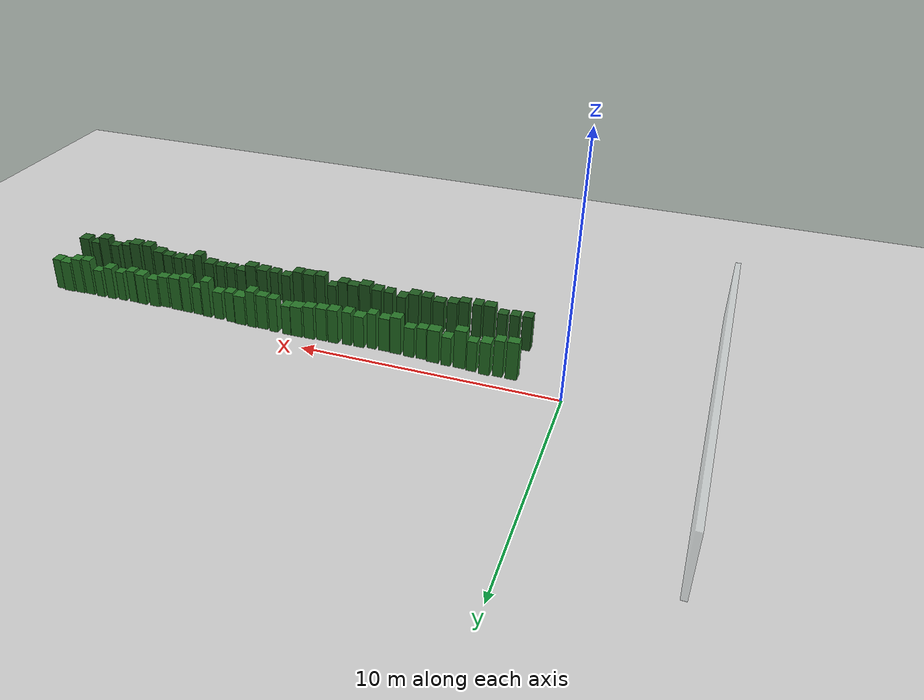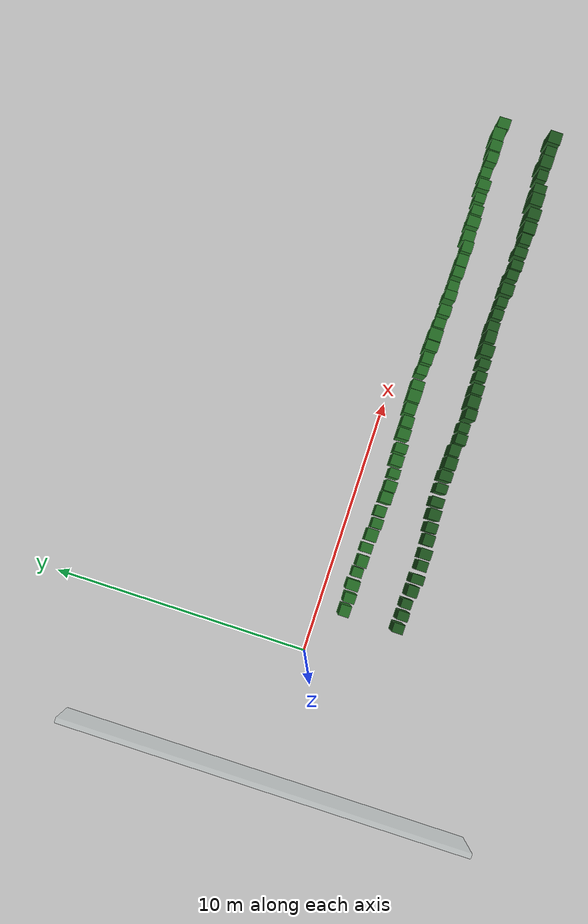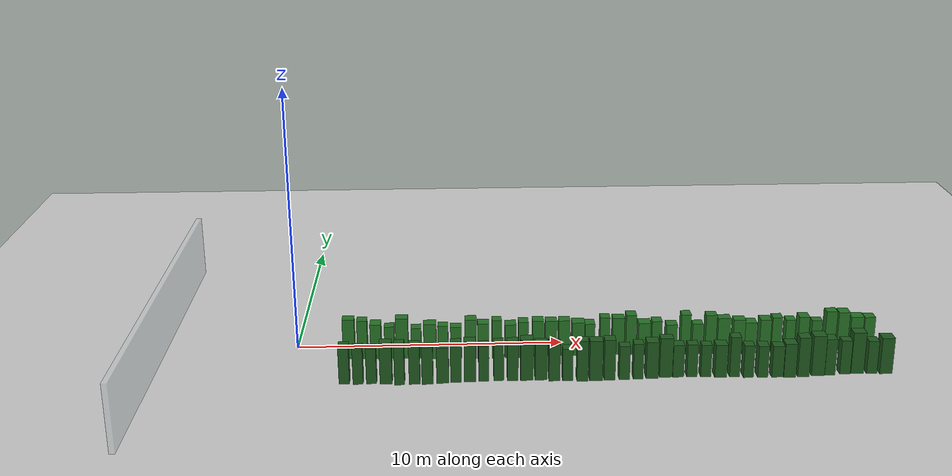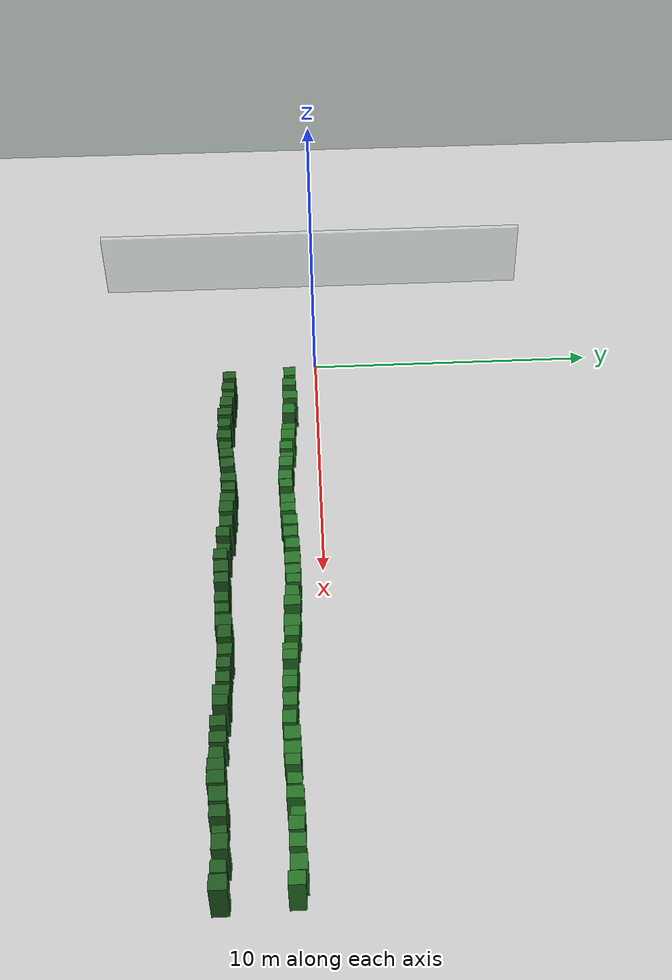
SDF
<sdf version="1.6">
 <world name="default">
  <include><uri>model://ground_plane</uri></include>
  <include><uri>model://sun</uri></include>
  <model name="crop_row_0">
   <static>true</static>
   <link name="row">
    <collision name="c0">
     <pose>2.003 -3.043 0.730 0 0 0</pose>
     <geometry><box><size>0.370 0.432 1.460</size></box></geometry>
    </collision>
    <visual name="v0">
     <pose>2.003 -3.043 0.730 0 0 0</pose>
     <geometry><box><size>0.370 0.432 1.460</size></box></geometry>
     <material><ambient>0.12 0.35 0.12 1</ambient><diffuse>0.12 0.35 0.12 1</diffuse></material>
    </visual>
    <collision name="c1">
     <pose>2.495 -3.077 0.701 0 0 0</pose>
     <geometry><box><size>0.358 0.437 1.403</size></box></geometry>
    </collision>
    <visual name="v1">
     <pose>2.495 -3.077 0.701 0 0 0</pose>
     <geometry><box><size>0.358 0.437 1.403</size></box></geometry>
     <material><ambient>0.12 0.35 0.12 1</ambient><diffuse>0.12 0.35 0.12 1</diffuse></material>
    </visual>
    <collision name="c2">
     <pose>2.970 -3.068 0.685 0 0 0</pose>
     <geometry><box><size>0.362 0.407 1.370</size></box></geometry>
    </collision>
    <visual name="v2">
     <pose>2.970 -3.068 0.685 0 0 0</pose>
     <geometry><box><size>0.362 0.407 1.370</size></box></geometry>
     <material><ambient>0.12 0.35 0.12 1</ambient><diffuse>0.12 0.35 0.12 1</diffuse></material>
    </visual>
    <collision name="c3">
     <pose>3.492 -3.118 0.790 0 0 0</pose>
     <geometry><box><size>0.432 0.422 1.579</size></box></geometry>
    </collision>
    <visual name="v3">
     <pose>3.492 -3.118 0.790 0 0 0</pose>
     <geometry><box><size>0.432 0.422 1.579</size></box></geometry>
     <material><ambient>0.12 0.35 0.12 1</ambient><diffuse>0.12 0.35 0.12 1</diffuse></material>
    </visual>
    <collision name="c4">
     <pose>3.972 -3.160 0.772 0 0 0</pose>
     <geometry><box><size>0.356 0.498 1.543</size></box></geometry>
    </collision>
    <visual name="v4">
     <pose>3.972 -3.160 0.772 0 0 0</pose>
     <geometry><box><size>0.356 0.498 1.543</size></box></geometry>
     <material><ambient>0.12 0.35 0.12 1</ambient><diffuse>0.12 0.35 0.12 1</diffuse></material>
    </visual>
    <collision name="c5">
     <pose>4.507 -3.174 0.763 0 0 0</pose>
     <geometry><box><size>0.390 0.412 1.526</size></box></geometry>
    </collision>
    <visual name="v5">
     <pose>4.507 -3.174 0.763 0 0 0</pose>
     <geometry><box><size>0.390 0.412 1.526</size></box></geometry>
     <material><ambient>0.12 0.35 0.12 1</ambient><diffuse>0.12 0.35 0.12 1</diffuse></material>
    </visual>
    <collision name="c6">
     <pose>4.965 -3.171 0.710 0 0 0</pose>
     <geometry><box><size>0.398 0.464 1.419</size></box></geometry>
    </collision>
    <visual name="v6">
     <pose>4.965 -3.171 0.710 0 0 0</pose>
     <geometry><box><size>0.398 0.464 1.419</size></box></geometry>
     <material><ambient>0.12 0.35 0.12 1</ambient><diffuse>0.12 0.35 0.12 1</diffuse></material>
    </visual>
    <collision name="c7">
     <pose>5.507 -3.129 0.686 0 0 0</pose>
     <geometry><box><size>0.438 0.421 1.371</size></box></geometry>
    </collision>
    <visual name="v7">
     <pose>5.507 -3.129 0.686 0 0 0</pose>
     <geometry><box><size>0.438 0.421 1.371</size></box></geometry>
     <material><ambient>0.12 0.35 0.12 1</ambient><diffuse>0.12 0.35 0.12 1</diffuse></material>
    </visual>
    <collision name="c8">
     <pose>5.980 -3.070 0.759 0 0 0</pose>
     <geometry><box><size>0.389 0.445 1.518</size></box></geometry>
    </collision>
    <visual name="v8">
     <pose>5.980 -3.070 0.759 0 0 0</pose>
     <geometry><box><size>0.389 0.445 1.518</size></box></geometry>
     <material><ambient>0.12 0.35 0.12 1</ambient><diffuse>0.12 0.35 0.12 1</diffuse></material>
    </visual>
    <collision name="c9">
     <pose>6.483 -3.030 0.775 0 0 0</pose>
     <geometry><box><size>0.418 0.457 1.550</size></box></geometry>
    </collision>
    <visual name="v9">
     <pose>6.483 -3.030 0.775 0 0 0</pose>
     <geometry><box><size>0.418 0.457 1.550</size></box></geometry>
     <material><ambient>0.12 0.35 0.12 1</ambient><diffuse>0.12 0.35 0.12 1</diffuse></material>
    </visual>
    <collision name="c10">
     <pose>6.972 -2.998 0.684 0 0 0</pose>
     <geometry><box><size>0.365 0.498 1.367</size></box></geometry>
    </collision>
    <visual name="v10">
     <pose>6.972 -2.998 0.684 0 0 0</pose>
     <geometry><box><size>0.365 0.498 1.367</size></box></geometry>
     <material><ambient>0.12 0.35 0.12 1</ambient><diffuse>0.12 0.35 0.12 1</diffuse></material>
    </visual>
    <collision name="c11">
     <pose>7.506 -2.981 0.734 0 0 0</pose>
     <geometry><box><size>0.355 0.449 1.467</size></box></geometry>
    </collision>
    <visual name="v11">
     <pose>7.506 -2.981 0.734 0 0 0</pose>
     <geometry><box><size>0.355 0.449 1.467</size></box></geometry>
     <material><ambient>0.12 0.35 0.12 1</ambient><diffuse>0.12 0.35 0.12 1</diffuse></material>
    </visual>
    <collision name="c12">
     <pose>8.006 -2.992 0.739 0 0 0</pose>
     <geometry><box><size>0.391 0.488 1.478</size></box></geometry>
    </collision>
    <visual name="v12">
     <pose>8.006 -2.992 0.739 0 0 0</pose>
     <geometry><box><size>0.391 0.488 1.478</size></box></geometry>
     <material><ambient>0.12 0.35 0.12 1</ambient><diffuse>0.12 0.35 0.12 1</diffuse></material>
    </visual>
    <collision name="c13">
     <pose>8.513 -3.019 0.789 0 0 0</pose>
     <geometry><box><size>0.459 0.446 1.578</size></box></geometry>
    </collision>
    <visual name="v13">
     <pose>8.513 -3.019 0.789 0 0 0</pose>
     <geometry><box><size>0.459 0.446 1.578</size></box></geometry>
     <material><ambient>0.12 0.35 0.12 1</ambient><diffuse>0.12 0.35 0.12 1</diffuse></material>
    </visual>
    <collision name="c14">
     <pose>9.026 -3.020 0.729 0 0 0</pose>
     <geometry><box><size>0.441 0.406 1.459</size></box></geometry>
    </collision>
    <visual name="v14">
     <pose>9.026 -3.020 0.729 0 0 0</pose>
     <geometry><box><size>0.441 0.406 1.459</size></box></geometry>
     <material><ambient>0.12 0.35 0.12 1</ambient><diffuse>0.12 0.35 0.12 1</diffuse></material>
    </visual>
    <collision name="c15">
     <pose>9.497 -3.116 0.734 0 0 0</pose>
     <geometry><box><size>0.400 0.428 1.467</size></box></geometry>
    </collision>
    <visual name="v15">
     <pose>9.497 -3.116 0.734 0 0 0</pose>
     <geometry><box><size>0.400 0.428 1.467</size></box></geometry>
     <material><ambient>0.12 0.35 0.12 1</ambient><diffuse>0.12 0.35 0.12 1</diffuse></material>
    </visual>
    <collision name="c16">
     <pose>9.970 -3.107 0.612 0 0 0</pose>
     <geometry><box><size>0.365 0.417 1.224</size></box></geometry>
    </collision>
    <visual name="v16">
     <pose>9.970 -3.107 0.612 0 0 0</pose>
     <geometry><box><size>0.365 0.417 1.224</size></box></geometry>
     <material><ambient>0.12 0.35 0.12 1</ambient><diffuse>0.12 0.35 0.12 1</diffuse></material>
    </visual>
    <collision name="c17">
     <pose>10.496 -3.172 0.774 0 0 0</pose>
     <geometry><box><size>0.401 0.425 1.549</size></box></geometry>
    </collision>
    <visual name="v17">
     <pose>10.496 -3.172 0.774 0 0 0</pose>
     <geometry><box><size>0.401 0.425 1.549</size></box></geometry>
     <material><ambient>0.12 0.35 0.12 1</ambient><diffuse>0.12 0.35 0.12 1</diffuse></material>
    </visual>
    <collision name="c18">
     <pose>10.982 -3.133 0.764 0 0 0</pose>
     <geometry><box><size>0.465 0.455 1.528</size></box></geometry>
    </collision>
    <visual name="v18">
     <pose>10.982 -3.133 0.764 0 0 0</pose>
     <geometry><box><size>0.465 0.455 1.528</size></box></geometry>
     <material><ambient>0.12 0.35 0.12 1</ambient><diffuse>0.12 0.35 0.12 1</diffuse></material>
    </visual>
    <collision name="c19">
     <pose>11.472 -3.117 0.777 0 0 0</pose>
     <geometry><box><size>0.397 0.442 1.554</size></box></geometry>
    </collision>
    <visual name="v19">
     <pose>11.472 -3.117 0.777 0 0 0</pose>
     <geometry><box><size>0.397 0.442 1.554</size></box></geometry>
     <material><ambient>0.12 0.35 0.12 1</ambient><diffuse>0.12 0.35 0.12 1</diffuse></material>
    </visual>
    <collision name="c20">
     <pose>12.007 -3.119 0.647 0 0 0</pose>
     <geometry><box><size>0.380 0.418 1.293</size></box></geometry>
    </collision>
    <visual name="v20">
     <pose>12.007 -3.119 0.647 0 0 0</pose>
     <geometry><box><size>0.380 0.418 1.293</size></box></geometry>
     <material><ambient>0.12 0.35 0.12 1</ambient><diffuse>0.12 0.35 0.12 1</diffuse></material>
    </visual>
    <collision name="c21">
     <pose>12.505 -3.090 0.684 0 0 0</pose>
     <geometry><box><size>0.351 0.426 1.368</size></box></geometry>
    </collision>
    <visual name="v21">
     <pose>12.505 -3.090 0.684 0 0 0</pose>
     <geometry><box><size>0.351 0.426 1.368</size></box></geometry>
     <material><ambient>0.12 0.35 0.12 1</ambient><diffuse>0.12 0.35 0.12 1</diffuse></material>
    </visual>
    <collision name="c22">
     <pose>13.014 -3.037 0.703 0 0 0</pose>
     <geometry><box><size>0.440 0.495 1.406</size></box></geometry>
    </collision>
    <visual name="v22">
     <pose>13.014 -3.037 0.703 0 0 0</pose>
     <geometry><box><size>0.440 0.495 1.406</size></box></geometry>
     <material><ambient>0.12 0.35 0.12 1</ambient><diffuse>0.12 0.35 0.12 1</diffuse></material>
    </visual>
    <collision name="c23">
     <pose>13.524 -2.991 0.756 0 0 0</pose>
     <geometry><box><size>0.467 0.405 1.512</size></box></geometry>
    </collision>
    <visual name="v23">
     <pose>13.524 -2.991 0.756 0 0 0</pose>
     <geometry><box><size>0.467 0.405 1.512</size></box></geometry>
     <material><ambient>0.12 0.35 0.12 1</ambient><diffuse>0.12 0.35 0.12 1</diffuse></material>
    </visual>
    <collision name="c24">
     <pose>13.965 -2.989 0.621 0 0 0</pose>
     <geometry><box><size>0.402 0.439 1.241</size></box></geometry>
    </collision>
    <visual name="v24">
     <pose>13.965 -2.989 0.621 0 0 0</pose>
     <geometry><box><size>0.402 0.439 1.241</size></box></geometry>
     <material><ambient>0.12 0.35 0.12 1</ambient><diffuse>0.12 0.35 0.12 1</diffuse></material>
    </visual>
    <collision name="c25">
     <pose>14.464 -3.008 0.632 0 0 0</pose>
     <geometry><box><size>0.377 0.407 1.265</size></box></geometry>
    </collision>
    <visual name="v25">
     <pose>14.464 -3.008 0.632 0 0 0</pose>
     <geometry><box><size>0.377 0.407 1.265</size></box></geometry>
     <material><ambient>0.12 0.35 0.12 1</ambient><diffuse>0.12 0.35 0.12 1</diffuse></material>
    </visual>
    <collision name="c26">
     <pose>14.962 -3.025 0.620 0 0 0</pose>
     <geometry><box><size>0.370 0.400 1.241</size></box></geometry>
    </collision>
    <visual name="v26">
     <pose>14.962 -3.025 0.620 0 0 0</pose>
     <geometry><box><size>0.370 0.400 1.241</size></box></geometry>
     <material><ambient>0.12 0.35 0.12 1</ambient><diffuse>0.12 0.35 0.12 1</diffuse></material>
    </visual>
    <collision name="c27">
     <pose>15.488 -3.064 0.630 0 0 0</pose>
     <geometry><box><size>0.430 0.487 1.259</size></box></geometry>
    </collision>
    <visual name="v27">
     <pose>15.488 -3.064 0.630 0 0 0</pose>
     <geometry><box><size>0.430 0.487 1.259</size></box></geometry>
     <material><ambient>0.12 0.35 0.12 1</ambient><diffuse>0.12 0.35 0.12 1</diffuse></material>
    </visual>
    <collision name="c28">
     <pose>15.997 -3.058 0.770 0 0 0</pose>
     <geometry><box><size>0.366 0.436 1.540</size></box></geometry>
    </collision>
    <visual name="v28">
     <pose>15.997 -3.058 0.770 0 0 0</pose>
     <geometry><box><size>0.366 0.436 1.540</size></box></geometry>
     <material><ambient>0.12 0.35 0.12 1</ambient><diffuse>0.12 0.35 0.12 1</diffuse></material>
    </visual>
    <collision name="c29">
     <pose>16.481 -3.132 0.620 0 0 0</pose>
     <geometry><box><size>0.361 0.448 1.241</size></box></geometry>
    </collision>
    <visual name="v29">
     <pose>16.481 -3.132 0.620 0 0 0</pose>
     <geometry><box><size>0.361 0.448 1.241</size></box></geometry>
     <material><ambient>0.12 0.35 0.12 1</ambient><diffuse>0.12 0.35 0.12 1</diffuse></material>
    </visual>
    <collision name="c30">
     <pose>17.002 -3.120 0.605 0 0 0</pose>
     <geometry><box><size>0.371 0.483 1.209</size></box></geometry>
    </collision>
    <visual name="v30">
     <pose>17.002 -3.120 0.605 0 0 0</pose>
     <geometry><box><size>0.371 0.483 1.209</size></box></geometry>
     <material><ambient>0.12 0.35 0.12 1</ambient><diffuse>0.12 0.35 0.12 1</diffuse></material>
    </visual>
    <collision name="c31">
     <pose>17.538 -3.153 0.605 0 0 0</pose>
     <geometry><box><size>0.421 0.415 1.211</size></box></geometry>
    </collision>
    <visual name="v31">
     <pose>17.538 -3.153 0.605 0 0 0</pose>
     <geometry><box><size>0.421 0.415 1.211</size></box></geometry>
     <material><ambient>0.12 0.35 0.12 1</ambient><diffuse>0.12 0.35 0.12 1</diffuse></material>
    </visual>
    <collision name="c32">
     <pose>17.973 -3.152 0.652 0 0 0</pose>
     <geometry><box><size>0.441 0.486 1.304</size></box></geometry>
    </collision>
    <visual name="v32">
     <pose>17.973 -3.152 0.652 0 0 0</pose>
     <geometry><box><size>0.441 0.486 1.304</size></box></geometry>
     <material><ambient>0.12 0.35 0.12 1</ambient><diffuse>0.12 0.35 0.12 1</diffuse></material>
    </visual>
    <collision name="c33">
     <pose>18.478 -3.128 0.756 0 0 0</pose>
     <geometry><box><size>0.419 0.477 1.512</size></box></geometry>
    </collision>
    <visual name="v33">
     <pose>18.478 -3.128 0.756 0 0 0</pose>
     <geometry><box><size>0.419 0.477 1.512</size></box></geometry>
     <material><ambient>0.12 0.35 0.12 1</ambient><diffuse>0.12 0.35 0.12 1</diffuse></material>
    </visual>
    <collision name="c34">
     <pose>19.025 -3.063 0.771 0 0 0</pose>
     <geometry><box><size>0.478 0.481 1.541</size></box></geometry>
    </collision>
    <visual name="v34">
     <pose>19.025 -3.063 0.771 0 0 0</pose>
     <geometry><box><size>0.478 0.481 1.541</size></box></geometry>
     <material><ambient>0.12 0.35 0.12 1</ambient><diffuse>0.12 0.35 0.12 1</diffuse></material>
    </visual>
    <collision name="c35">
     <pose>19.462 -3.053 0.704 0 0 0</pose>
     <geometry><box><size>0.379 0.474 1.407</size></box></geometry>
    </collision>
    <visual name="v35">
     <pose>19.462 -3.053 0.704 0 0 0</pose>
     <geometry><box><size>0.379 0.474 1.407</size></box></geometry>
     <material><ambient>0.12 0.35 0.12 1</ambient><diffuse>0.12 0.35 0.12 1</diffuse></material>
    </visual>
    <collision name="c36">
     <pose>20.037 -3.002 0.652 0 0 0</pose>
     <geometry><box><size>0.386 0.403 1.304</size></box></geometry>
    </collision>
    <visual name="v36">
     <pose>20.037 -3.002 0.652 0 0 0</pose>
     <geometry><box><size>0.386 0.403 1.304</size></box></geometry>
     <material><ambient>0.12 0.35 0.12 1</ambient><diffuse>0.12 0.35 0.12 1</diffuse></material>
    </visual>
    <collision name="c37">
     <pose>20.489 -2.969 0.798 0 0 0</pose>
     <geometry><box><size>0.472 0.445 1.595</size></box></geometry>
    </collision>
    <visual name="v37">
     <pose>20.489 -2.969 0.798 0 0 0</pose>
     <geometry><box><size>0.472 0.445 1.595</size></box></geometry>
     <material><ambient>0.12 0.35 0.12 1</ambient><diffuse>0.12 0.35 0.12 1</diffuse></material>
    </visual>
    <collision name="c38">
     <pose>21.010 -3.016 0.639 0 0 0</pose>
     <geometry><box><size>0.379 0.422 1.279</size></box></geometry>
    </collision>
    <visual name="v38">
     <pose>21.010 -3.016 0.639 0 0 0</pose>
     <geometry><box><size>0.379 0.422 1.279</size></box></geometry>
     <material><ambient>0.12 0.35 0.12 1</ambient><diffuse>0.12 0.35 0.12 1</diffuse></material>
    </visual>
    <collision name="c39">
     <pose>21.524 -3.008 0.696 0 0 0</pose>
     <geometry><box><size>0.459 0.490 1.392</size></box></geometry>
    </collision>
    <visual name="v39">
     <pose>21.524 -3.008 0.696 0 0 0</pose>
     <geometry><box><size>0.459 0.490 1.392</size></box></geometry>
     <material><ambient>0.12 0.35 0.12 1</ambient><diffuse>0.12 0.35 0.12 1</diffuse></material>
    </visual>
   </link>
  </model>
  <model name="crop_row_1">
   <static>true</static>
   <link name="row">
    <collision name="c0">
     <pose>2.020 -0.929 0.782 0 0 0</pose>
     <geometry><box><size>0.436 0.408 1.564</size></box></geometry>
    </collision>
    <visual name="v0">
     <pose>2.020 -0.929 0.782 0 0 0</pose>
     <geometry><box><size>0.436 0.408 1.564</size></box></geometry>
     <material><ambient>0.15 0.45 0.15 1</ambient><diffuse>0.15 0.45 0.15 1</diffuse></material>
    </visual>
    <collision name="c1">
     <pose>2.524 -0.956 0.758 0 0 0</pose>
     <geometry><box><size>0.373 0.448 1.516</size></box></geometry>
    </collision>
    <visual name="v1">
     <pose>2.524 -0.956 0.758 0 0 0</pose>
     <geometry><box><size>0.373 0.448 1.516</size></box></geometry>
     <material><ambient>0.15 0.45 0.15 1</ambient><diffuse>0.15 0.45 0.15 1</diffuse></material>
    </visual>
    <collision name="c2">
     <pose>3.018 -0.929 0.680 0 0 0</pose>
     <geometry><box><size>0.401 0.497 1.361</size></box></geometry>
    </collision>
    <visual name="v2">
     <pose>3.018 -0.929 0.680 0 0 0</pose>
     <geometry><box><size>0.401 0.497 1.361</size></box></geometry>
     <material><ambient>0.15 0.45 0.15 1</ambient><diffuse>0.15 0.45 0.15 1</diffuse></material>
    </visual>
    <collision name="c3">
     <pose>3.525 -0.949 0.630 0 0 0</pose>
     <geometry><box><size>0.367 0.417 1.260</size></box></geometry>
    </collision>
    <visual name="v3">
     <pose>3.525 -0.949 0.630 0 0 0</pose>
     <geometry><box><size>0.367 0.417 1.260</size></box></geometry>
     <material><ambient>0.15 0.45 0.15 1</ambient><diffuse>0.15 0.45 0.15 1</diffuse></material>
    </visual>
    <collision name="c4">
     <pose>3.988 -0.988 0.796 0 0 0</pose>
     <geometry><box><size>0.457 0.415 1.592</size></box></geometry>
    </collision>
    <visual name="v4">
     <pose>3.988 -0.988 0.796 0 0 0</pose>
     <geometry><box><size>0.457 0.415 1.592</size></box></geometry>
     <material><ambient>0.15 0.45 0.15 1</ambient><diffuse>0.15 0.45 0.15 1</diffuse></material>
    </visual>
    <collision name="c5">
     <pose>4.512 -0.997 0.603 0 0 0</pose>
     <geometry><box><size>0.367 0.455 1.206</size></box></geometry>
    </collision>
    <visual name="v5">
     <pose>4.512 -0.997 0.603 0 0 0</pose>
     <geometry><box><size>0.367 0.455 1.206</size></box></geometry>
     <material><ambient>0.15 0.45 0.15 1</ambient><diffuse>0.15 0.45 0.15 1</diffuse></material>
    </visual>
    <collision name="c6">
     <pose>5.026 -1.030 0.687 0 0 0</pose>
     <geometry><box><size>0.471 0.453 1.374</size></box></geometry>
    </collision>
    <visual name="v6">
     <pose>5.026 -1.030 0.687 0 0 0</pose>
     <geometry><box><size>0.471 0.453 1.374</size></box></geometry>
     <material><ambient>0.15 0.45 0.15 1</ambient><diffuse>0.15 0.45 0.15 1</diffuse></material>
    </visual>
    <collision name="c7">
     <pose>5.507 -1.092 0.659 0 0 0</pose>
     <geometry><box><size>0.383 0.421 1.317</size></box></geometry>
    </collision>
    <visual name="v7">
     <pose>5.507 -1.092 0.659 0 0 0</pose>
     <geometry><box><size>0.383 0.421 1.317</size></box></geometry>
     <material><ambient>0.15 0.45 0.15 1</ambient><diffuse>0.15 0.45 0.15 1</diffuse></material>
    </visual>
    <collision name="c8">
     <pose>5.988 -1.070 0.626 0 0 0</pose>
     <geometry><box><size>0.404 0.426 1.252</size></box></geometry>
    </collision>
    <visual name="v8">
     <pose>5.988 -1.070 0.626 0 0 0</pose>
     <geometry><box><size>0.404 0.426 1.252</size></box></geometry>
     <material><ambient>0.15 0.45 0.15 1</ambient><diffuse>0.15 0.45 0.15 1</diffuse></material>
    </visual>
    <collision name="c9">
     <pose>6.533 -1.109 0.781 0 0 0</pose>
     <geometry><box><size>0.426 0.446 1.562</size></box></geometry>
    </collision>
    <visual name="v9">
     <pose>6.533 -1.109 0.781 0 0 0</pose>
     <geometry><box><size>0.426 0.446 1.562</size></box></geometry>
     <material><ambient>0.15 0.45 0.15 1</ambient><diffuse>0.15 0.45 0.15 1</diffuse></material>
    </visual>
    <collision name="c10">
     <pose>6.995 -1.133 0.705 0 0 0</pose>
     <geometry><box><size>0.419 0.450 1.409</size></box></geometry>
    </collision>
    <visual name="v10">
     <pose>6.995 -1.133 0.705 0 0 0</pose>
     <geometry><box><size>0.419 0.450 1.409</size></box></geometry>
     <material><ambient>0.15 0.45 0.15 1</ambient><diffuse>0.15 0.45 0.15 1</diffuse></material>
    </visual>
    <collision name="c11">
     <pose>7.498 -1.114 0.760 0 0 0</pose>
     <geometry><box><size>0.351 0.418 1.520</size></box></geometry>
    </collision>
    <visual name="v11">
     <pose>7.498 -1.114 0.760 0 0 0</pose>
     <geometry><box><size>0.351 0.418 1.520</size></box></geometry>
     <material><ambient>0.15 0.45 0.15 1</ambient><diffuse>0.15 0.45 0.15 1</diffuse></material>
    </visual>
    <collision name="c12">
     <pose>8.004 -1.075 0.665 0 0 0</pose>
     <geometry><box><size>0.422 0.473 1.330</size></box></geometry>
    </collision>
    <visual name="v12">
     <pose>8.004 -1.075 0.665 0 0 0</pose>
     <geometry><box><size>0.422 0.473 1.330</size></box></geometry>
     <material><ambient>0.15 0.45 0.15 1</ambient><diffuse>0.15 0.45 0.15 1</diffuse></material>
    </visual>
    <collision name="c13">
     <pose>8.482 -1.067 0.712 0 0 0</pose>
     <geometry><box><size>0.364 0.478 1.424</size></box></geometry>
    </collision>
    <visual name="v13">
     <pose>8.482 -1.067 0.712 0 0 0</pose>
     <geometry><box><size>0.364 0.478 1.424</size></box></geometry>
     <material><ambient>0.15 0.45 0.15 1</ambient><diffuse>0.15 0.45 0.15 1</diffuse></material>
    </visual>
    <collision name="c14">
     <pose>9.033 -1.009 0.712 0 0 0</pose>
     <geometry><box><size>0.416 0.477 1.425</size></box></geometry>
    </collision>
    <visual name="v14">
     <pose>9.033 -1.009 0.712 0 0 0</pose>
     <geometry><box><size>0.416 0.477 1.425</size></box></geometry>
     <material><ambient>0.15 0.45 0.15 1</ambient><diffuse>0.15 0.45 0.15 1</diffuse></material>
    </visual>
    <collision name="c15">
     <pose>9.515 -0.997 0.701 0 0 0</pose>
     <geometry><box><size>0.430 0.444 1.402</size></box></geometry>
    </collision>
    <visual name="v15">
     <pose>9.515 -0.997 0.701 0 0 0</pose>
     <geometry><box><size>0.430 0.444 1.402</size></box></geometry>
     <material><ambient>0.15 0.45 0.15 1</ambient><diffuse>0.15 0.45 0.15 1</diffuse></material>
    </visual>
    <collision name="c16">
     <pose>10.016 -0.947 0.696 0 0 0</pose>
     <geometry><box><size>0.419 0.445 1.391</size></box></geometry>
    </collision>
    <visual name="v16">
     <pose>10.016 -0.947 0.696 0 0 0</pose>
     <geometry><box><size>0.419 0.445 1.391</size></box></geometry>
     <material><ambient>0.15 0.45 0.15 1</ambient><diffuse>0.15 0.45 0.15 1</diffuse></material>
    </visual>
    <collision name="c17">
     <pose>10.535 -0.952 0.652 0 0 0</pose>
     <geometry><box><size>0.472 0.488 1.304</size></box></geometry>
    </collision>
    <visual name="v17">
     <pose>10.535 -0.952 0.652 0 0 0</pose>
     <geometry><box><size>0.472 0.488 1.304</size></box></geometry>
     <material><ambient>0.15 0.45 0.15 1</ambient><diffuse>0.15 0.45 0.15 1</diffuse></material>
    </visual>
    <collision name="c18">
     <pose>10.966 -0.950 0.624 0 0 0</pose>
     <geometry><box><size>0.368 0.484 1.249</size></box></geometry>
    </collision>
    <visual name="v18">
     <pose>10.966 -0.950 0.624 0 0 0</pose>
     <geometry><box><size>0.368 0.484 1.249</size></box></geometry>
     <material><ambient>0.15 0.45 0.15 1</ambient><diffuse>0.15 0.45 0.15 1</diffuse></material>
    </visual>
    <collision name="c19">
     <pose>11.532 -0.929 0.734 0 0 0</pose>
     <geometry><box><size>0.360 0.424 1.468</size></box></geometry>
    </collision>
    <visual name="v19">
     <pose>11.532 -0.929 0.734 0 0 0</pose>
     <geometry><box><size>0.360 0.424 1.468</size></box></geometry>
     <material><ambient>0.15 0.45 0.15 1</ambient><diffuse>0.15 0.45 0.15 1</diffuse></material>
    </visual>
    <collision name="c20">
     <pose>12.031 -0.977 0.732 0 0 0</pose>
     <geometry><box><size>0.443 0.415 1.464</size></box></geometry>
    </collision>
    <visual name="v20">
     <pose>12.031 -0.977 0.732 0 0 0</pose>
     <geometry><box><size>0.443 0.415 1.464</size></box></geometry>
     <material><ambient>0.15 0.45 0.15 1</ambient><diffuse>0.15 0.45 0.15 1</diffuse></material>
    </visual>
    <collision name="c21">
     <pose>12.499 -0.980 0.791 0 0 0</pose>
     <geometry><box><size>0.379 0.497 1.581</size></box></geometry>
    </collision>
    <visual name="v21">
     <pose>12.499 -0.980 0.791 0 0 0</pose>
     <geometry><box><size>0.379 0.497 1.581</size></box></geometry>
     <material><ambient>0.15 0.45 0.15 1</ambient><diffuse>0.15 0.45 0.15 1</diffuse></material>
    </visual>
    <collision name="c22">
     <pose>13.001 -1.002 0.632 0 0 0</pose>
     <geometry><box><size>0.458 0.499 1.265</size></box></geometry>
    </collision>
    <visual name="v22">
     <pose>13.001 -1.002 0.632 0 0 0</pose>
     <geometry><box><size>0.458 0.499 1.265</size></box></geometry>
     <material><ambient>0.15 0.45 0.15 1</ambient><diffuse>0.15 0.45 0.15 1</diffuse></material>
    </visual>
    <collision name="c23">
     <pose>13.462 -1.012 0.664 0 0 0</pose>
     <geometry><box><size>0.375 0.434 1.327</size></box></geometry>
    </collision>
    <visual name="v23">
     <pose>13.462 -1.012 0.664 0 0 0</pose>
     <geometry><box><size>0.375 0.434 1.327</size></box></geometry>
     <material><ambient>0.15 0.45 0.15 1</ambient><diffuse>0.15 0.45 0.15 1</diffuse></material>
    </visual>
    <collision name="c24">
     <pose>14.010 -1.062 0.604 0 0 0</pose>
     <geometry><box><size>0.407 0.455 1.207</size></box></geometry>
    </collision>
    <visual name="v24">
     <pose>14.010 -1.062 0.604 0 0 0</pose>
     <geometry><box><size>0.407 0.455 1.207</size></box></geometry>
     <material><ambient>0.15 0.45 0.15 1</ambient><diffuse>0.15 0.45 0.15 1</diffuse></material>
    </visual>
    <collision name="c25">
     <pose>14.538 -1.059 0.797 0 0 0</pose>
     <geometry><box><size>0.358 0.451 1.594</size></box></geometry>
    </collision>
    <visual name="v25">
     <pose>14.538 -1.059 0.797 0 0 0</pose>
     <geometry><box><size>0.358 0.451 1.594</size></box></geometry>
     <material><ambient>0.15 0.45 0.15 1</ambient><diffuse>0.15 0.45 0.15 1</diffuse></material>
    </visual>
    <collision name="c26">
     <pose>14.982 -1.078 0.608 0 0 0</pose>
     <geometry><box><size>0.385 0.410 1.216</size></box></geometry>
    </collision>
    <visual name="v26">
     <pose>14.982 -1.078 0.608 0 0 0</pose>
     <geometry><box><size>0.385 0.410 1.216</size></box></geometry>
     <material><ambient>0.15 0.45 0.15 1</ambient><diffuse>0.15 0.45 0.15 1</diffuse></material>
    </visual>
    <collision name="c27">
     <pose>15.481 -1.085 0.782 0 0 0</pose>
     <geometry><box><size>0.405 0.413 1.565</size></box></geometry>
    </collision>
    <visual name="v27">
     <pose>15.481 -1.085 0.782 0 0 0</pose>
     <geometry><box><size>0.405 0.413 1.565</size></box></geometry>
     <material><ambient>0.15 0.45 0.15 1</ambient><diffuse>0.15 0.45 0.15 1</diffuse></material>
    </visual>
    <collision name="c28">
     <pose>15.967 -1.092 0.714 0 0 0</pose>
     <geometry><box><size>0.469 0.415 1.428</size></box></geometry>
    </collision>
    <visual name="v28">
     <pose>15.967 -1.092 0.714 0 0 0</pose>
     <geometry><box><size>0.469 0.415 1.428</size></box></geometry>
     <material><ambient>0.15 0.45 0.15 1</ambient><diffuse>0.15 0.45 0.15 1</diffuse></material>
    </visual>
    <collision name="c29">
     <pose>16.535 -1.120 0.685 0 0 0</pose>
     <geometry><box><size>0.439 0.406 1.370</size></box></geometry>
    </collision>
    <visual name="v29">
     <pose>16.535 -1.120 0.685 0 0 0</pose>
     <geometry><box><size>0.439 0.406 1.370</size></box></geometry>
     <material><ambient>0.15 0.45 0.15 1</ambient><diffuse>0.15 0.45 0.15 1</diffuse></material>
    </visual>
    <collision name="c30">
     <pose>16.965 -1.055 0.617 0 0 0</pose>
     <geometry><box><size>0.454 0.463 1.233</size></box></geometry>
    </collision>
    <visual name="v30">
     <pose>16.965 -1.055 0.617 0 0 0</pose>
     <geometry><box><size>0.454 0.463 1.233</size></box></geometry>
     <material><ambient>0.15 0.45 0.15 1</ambient><diffuse>0.15 0.45 0.15 1</diffuse></material>
    </visual>
    <collision name="c31">
     <pose>17.534 -1.049 0.668 0 0 0</pose>
     <geometry><box><size>0.409 0.486 1.336</size></box></geometry>
    </collision>
    <visual name="v31">
     <pose>17.534 -1.049 0.668 0 0 0</pose>
     <geometry><box><size>0.409 0.486 1.336</size></box></geometry>
     <material><ambient>0.15 0.45 0.15 1</ambient><diffuse>0.15 0.45 0.15 1</diffuse></material>
    </visual>
    <collision name="c32">
     <pose>17.969 -1.041 0.705 0 0 0</pose>
     <geometry><box><size>0.367 0.427 1.411</size></box></geometry>
    </collision>
    <visual name="v32">
     <pose>17.969 -1.041 0.705 0 0 0</pose>
     <geometry><box><size>0.367 0.427 1.411</size></box></geometry>
     <material><ambient>0.15 0.45 0.15 1</ambient><diffuse>0.15 0.45 0.15 1</diffuse></material>
    </visual>
    <collision name="c33">
     <pose>18.484 -1.009 0.640 0 0 0</pose>
     <geometry><box><size>0.357 0.416 1.281</size></box></geometry>
    </collision>
    <visual name="v33">
     <pose>18.484 -1.009 0.640 0 0 0</pose>
     <geometry><box><size>0.357 0.416 1.281</size></box></geometry>
     <material><ambient>0.15 0.45 0.15 1</ambient><diffuse>0.15 0.45 0.15 1</diffuse></material>
    </visual>
    <collision name="c34">
     <pose>18.988 -0.993 0.700 0 0 0</pose>
     <geometry><box><size>0.388 0.476 1.400</size></box></geometry>
    </collision>
    <visual name="v34">
     <pose>18.988 -0.993 0.700 0 0 0</pose>
     <geometry><box><size>0.388 0.476 1.400</size></box></geometry>
     <material><ambient>0.15 0.45 0.15 1</ambient><diffuse>0.15 0.45 0.15 1</diffuse></material>
    </visual>
    <collision name="c35">
     <pose>19.504 -0.942 0.603 0 0 0</pose>
     <geometry><box><size>0.383 0.402 1.206</size></box></geometry>
    </collision>
    <visual name="v35">
     <pose>19.504 -0.942 0.603 0 0 0</pose>
     <geometry><box><size>0.383 0.402 1.206</size></box></geometry>
     <material><ambient>0.15 0.45 0.15 1</ambient><diffuse>0.15 0.45 0.15 1</diffuse></material>
    </visual>
    <collision name="c36">
     <pose>20.026 -0.970 0.787 0 0 0</pose>
     <geometry><box><size>0.412 0.419 1.574</size></box></geometry>
    </collision>
    <visual name="v36">
     <pose>20.026 -0.970 0.787 0 0 0</pose>
     <geometry><box><size>0.412 0.419 1.574</size></box></geometry>
     <material><ambient>0.15 0.45 0.15 1</ambient><diffuse>0.15 0.45 0.15 1</diffuse></material>
    </visual>
    <collision name="c37">
     <pose>20.501 -0.953 0.767 0 0 0</pose>
     <geometry><box><size>0.414 0.443 1.534</size></box></geometry>
    </collision>
    <visual name="v37">
     <pose>20.501 -0.953 0.767 0 0 0</pose>
     <geometry><box><size>0.414 0.443 1.534</size></box></geometry>
     <material><ambient>0.15 0.45 0.15 1</ambient><diffuse>0.15 0.45 0.15 1</diffuse></material>
    </visual>
    <collision name="c38">
     <pose>21.017 -0.936 0.669 0 0 0</pose>
     <geometry><box><size>0.478 0.469 1.337</size></box></geometry>
    </collision>
    <visual name="v38">
     <pose>21.017 -0.936 0.669 0 0 0</pose>
     <geometry><box><size>0.478 0.469 1.337</size></box></geometry>
     <material><ambient>0.15 0.45 0.15 1</ambient><diffuse>0.15 0.45 0.15 1</diffuse></material>
    </visual>
    <collision name="c39">
     <pose>21.470 -1.000 0.670 0 0 0</pose>
     <geometry><box><size>0.403 0.464 1.339</size></box></geometry>
    </collision>
    <visual name="v39">
     <pose>21.470 -1.000 0.670 0 0 0</pose>
     <geometry><box><size>0.403 0.464 1.339</size></box></geometry>
     <material><ambient>0.15 0.45 0.15 1</ambient><diffuse>0.15 0.45 0.15 1</diffuse></material>
    </visual>
   </link>
  </model>
  <model name="wall_near">
   <static>true</static>
   <pose>-5.0 0.0 1.25 0 0 0</pose>
   <link name="body">
    <collision name="c"><geometry><box><size>0.2 16.0 2.5</size></box></geometry></collision>
    <visual name="v">
     <geometry><box><size>0.2 16.0 2.5</size></box></geometry>
     <material><ambient>0.8 0.85 0.85 0.4</ambient><diffuse>0.8 0.85 0.85 0.4</diffuse></material>
    </visual>
   </link>
  </model>
 </world>
</sdf>
